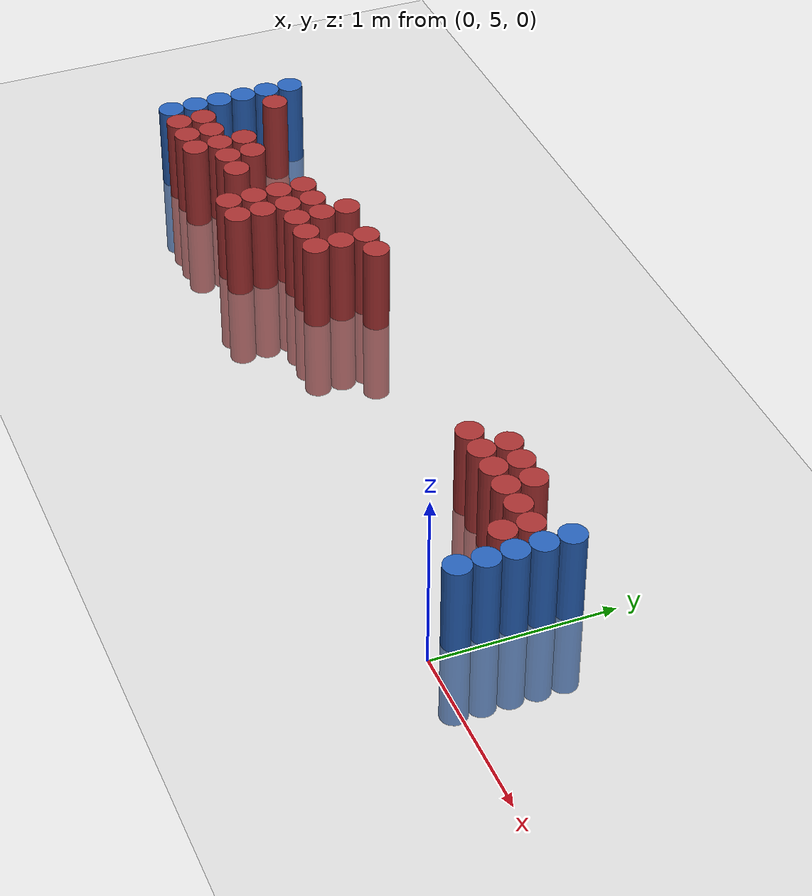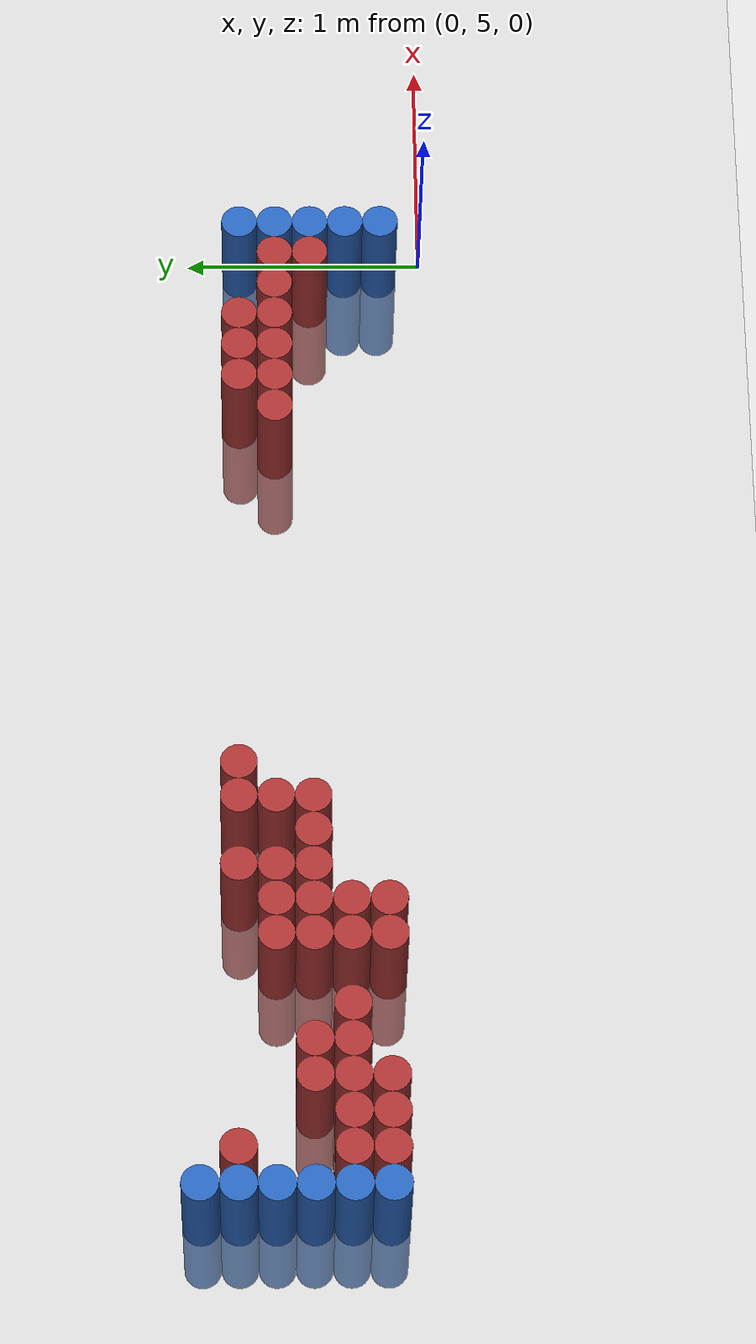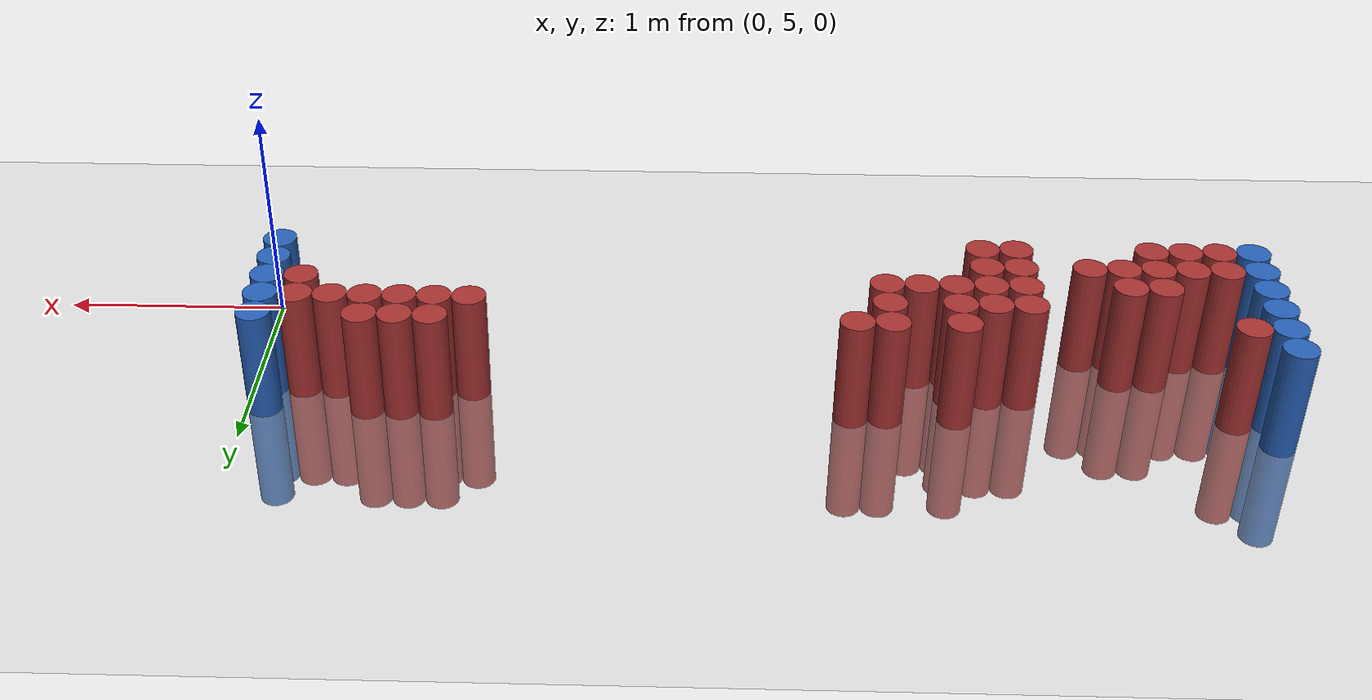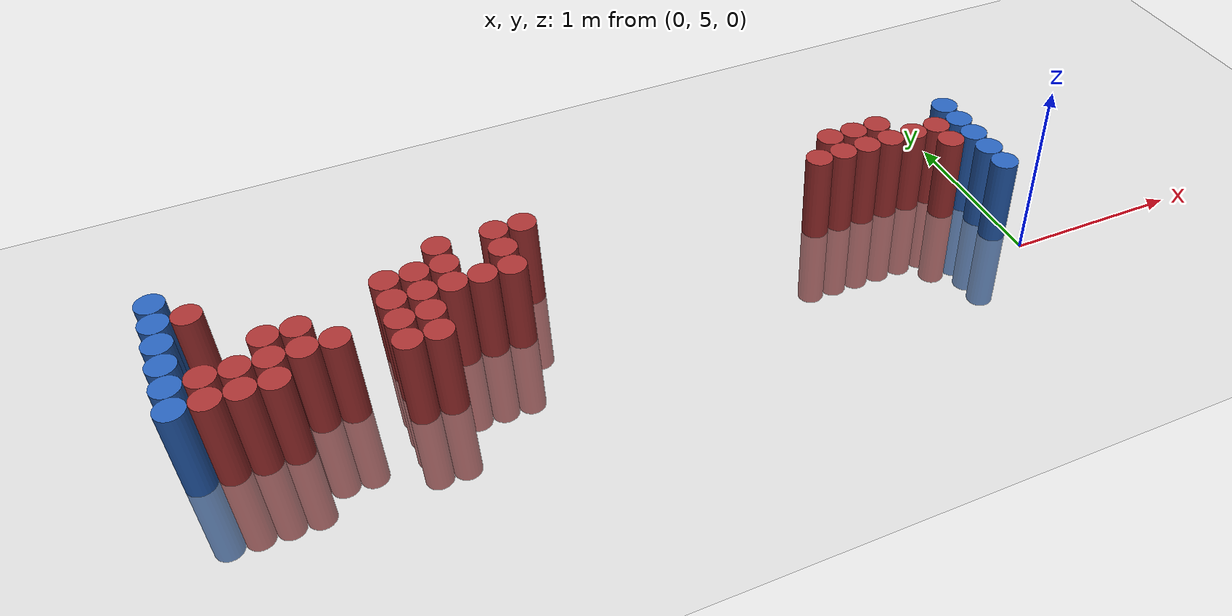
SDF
<sdf version="1.6">
 <world name="default">
  <model name="ground_plane">
   <static>1</static>
   <link name="link">
    <collision name="collision">
     <geometry><plane><normal>0 0 1</normal><size>100 100</size></plane></geometry>
     <surface><friction><ode><mu>100</mu><mu2>50</mu2></ode></friction></surface>
    </collision>
    <visual name="visual">
     <cast_shadows>0</cast_shadows>
     <geometry><plane><normal>0 0 1</normal><size>100 100</size></plane></geometry>
     <material>
      <script><uri>file://media/materials/scripts/gazebo.material</uri><name>Gazebo/Grey</name></script>
     </material>
    </visual>
   </link>
  </model>
  <model name="unit_cylinder_96">
   <static>1</static>
   <pose>-4.425000 5.175000 0.000000 0.000000 0.000000 0.000000</pose>
   <link name="link">
    <inertial>
     <mass>1</mass>
     <inertia><ixx>0.145833</ixx><ixy>0</ixy><ixz>0</ixz><iyy>0.145833</iyy><iyz>0</iyz><izz>0.125</izz></inertia>
    </inertial>
    <collision name="collision">
     <geometry><cylinder><radius>0.075000</radius><length>1</length></cylinder></geometry>
    </collision>
    <visual name="visual">
     <geometry><cylinder><radius>0.075000</radius><length>1</length></cylinder></geometry>
     <material>
      <ambient>0.152000 0.379000 0.720000 1</ambient>
      <diffuse>0.152000 0.379000 0.720000 1</diffuse>
     </material>
     <material>
      <script><name>Gazebo/Grey</name><uri>file://media/materials/scripts/gazebo.material</uri></script>
     </material>
    </visual>
   </link>
  </model>
  <model name="unit_cylinder_97">
   <static>1</static>
   <pose>-4.425000 5.325000 0.000000 0.000000 0.000000 0.000000</pose>
   <link name="link">
    <inertial>
     <mass>1</mass>
     <inertia><ixx>0.145833</ixx><ixy>0</ixy><ixz>0</ixz><iyy>0.145833</iyy><iyz>0</iyz><izz>0.125</izz></inertia>
    </inertial>
    <collision name="collision">
     <geometry><cylinder><radius>0.075000</radius><length>1</length></cylinder></geometry>
    </collision>
    <visual name="visual">
     <geometry><cylinder><radius>0.075000</radius><length>1</length></cylinder></geometry>
     <material>
      <ambient>0.152000 0.379000 0.720000 1</ambient>
      <diffuse>0.152000 0.379000 0.720000 1</diffuse>
     </material>
     <material>
      <script><name>Gazebo/Grey</name><uri>file://media/materials/scripts/gazebo.material</uri></script>
     </material>
    </visual>
   </link>
  </model>
  <model name="unit_cylinder_98">
   <static>1</static>
   <pose>-4.425000 5.475000 0.000000 0.000000 0.000000 0.000000</pose>
   <link name="link">
    <inertial>
     <mass>1</mass>
     <inertia><ixx>0.145833</ixx><ixy>0</ixy><ixz>0</ixz><iyy>0.145833</iyy><iyz>0</iyz><izz>0.125</izz></inertia>
    </inertial>
    <collision name="collision">
     <geometry><cylinder><radius>0.075000</radius><length>1</length></cylinder></geometry>
    </collision>
    <visual name="visual">
     <geometry><cylinder><radius>0.075000</radius><length>1</length></cylinder></geometry>
     <material>
      <ambient>0.152000 0.379000 0.720000 1</ambient>
      <diffuse>0.152000 0.379000 0.720000 1</diffuse>
     </material>
     <material>
      <script><name>Gazebo/Grey</name><uri>file://media/materials/scripts/gazebo.material</uri></script>
     </material>
    </visual>
   </link>
  </model>
  <model name="unit_cylinder_99">
   <static>1</static>
   <pose>-4.425000 5.625000 0.000000 0.000000 0.000000 0.000000</pose>
   <link name="link">
    <inertial>
     <mass>1</mass>
     <inertia><ixx>0.145833</ixx><ixy>0</ixy><ixz>0</ixz><iyy>0.145833</iyy><iyz>0</iyz><izz>0.125</izz></inertia>
    </inertial>
    <collision name="collision">
     <geometry><cylinder><radius>0.075000</radius><length>1</length></cylinder></geometry>
    </collision>
    <visual name="visual">
     <geometry><cylinder><radius>0.075000</radius><length>1</length></cylinder></geometry>
     <material>
      <ambient>0.152000 0.379000 0.720000 1</ambient>
      <diffuse>0.152000 0.379000 0.720000 1</diffuse>
     </material>
     <material>
      <script><name>Gazebo/Grey</name><uri>file://media/materials/scripts/gazebo.material</uri></script>
     </material>
    </visual>
   </link>
  </model>
  <model name="unit_cylinder_100">
   <static>1</static>
   <pose>-4.425000 5.775000 0.000000 0.000000 0.000000 0.000000</pose>
   <link name="link">
    <inertial>
     <mass>1</mass>
     <inertia><ixx>0.145833</ixx><ixy>0</ixy><ixz>0</ixz><iyy>0.145833</iyy><iyz>0</iyz><izz>0.125</izz></inertia>
    </inertial>
    <collision name="collision">
     <geometry><cylinder><radius>0.075000</radius><length>1</length></cylinder></geometry>
    </collision>
    <visual name="visual">
     <geometry><cylinder><radius>0.075000</radius><length>1</length></cylinder></geometry>
     <material>
      <ambient>0.152000 0.379000 0.720000 1</ambient>
      <diffuse>0.152000 0.379000 0.720000 1</diffuse>
     </material>
     <material>
      <script><name>Gazebo/Grey</name><uri>file://media/materials/scripts/gazebo.material</uri></script>
     </material>
    </visual>
   </link>
  </model>
  <model name="unit_cylinder_101">
   <static>1</static>
   <pose>-4.425000 5.925000 0.000000 0.000000 0.000000 0.000000</pose>
   <link name="link">
    <inertial>
     <mass>1</mass>
     <inertia><ixx>0.145833</ixx><ixy>0</ixy><ixz>0</ixz><iyy>0.145833</iyy><iyz>0</iyz><izz>0.125</izz></inertia>
    </inertial>
    <collision name="collision">
     <geometry><cylinder><radius>0.075000</radius><length>1</length></cylinder></geometry>
    </collision>
    <visual name="visual">
     <geometry><cylinder><radius>0.075000</radius><length>1</length></cylinder></geometry>
     <material>
      <ambient>0.152000 0.379000 0.720000 1</ambient>
      <diffuse>0.152000 0.379000 0.720000 1</diffuse>
     </material>
     <material>
      <script><name>Gazebo/Grey</name><uri>file://media/materials/scripts/gazebo.material</uri></script>
     </material>
    </visual>
   </link>
  </model>
  <model name="unit_cylinder_126">
   <static>1</static>
   <pose>-4.275000 5.175000 0.000000 0.000000 0.000000 0.000000</pose>
   <link name="link">
    <inertial>
     <mass>1</mass>
     <inertia><ixx>0.145833</ixx><ixy>0</ixy><ixz>0</ixz><iyy>0.145833</iyy><iyz>0</iyz><izz>0.125</izz></inertia>
    </inertial>
    <collision name="collision">
     <geometry><cylinder><radius>0.075000</radius><length>1</length></cylinder></geometry>
    </collision>
    <visual name="visual">
     <geometry><cylinder><radius>0.075000</radius><length>1</length></cylinder></geometry>
     <material>
      <ambient>0.648000 0.192000 0.192000 1</ambient>
      <diffuse>0.648000 0.192000 0.192000 1</diffuse>
     </material>
     <material>
      <script><name>Gazebo/Grey</name><uri>file://media/materials/scripts/gazebo.material</uri></script>
     </material>
    </visual>
   </link>
  </model>
  <model name="unit_cylinder_127">
   <static>1</static>
   <pose>-4.275000 5.325000 0.000000 0.000000 0.000000 0.000000</pose>
   <link name="link">
    <inertial>
     <mass>1</mass>
     <inertia><ixx>0.145833</ixx><ixy>0</ixy><ixz>0</ixz><iyy>0.145833</iyy><iyz>0</iyz><izz>0.125</izz></inertia>
    </inertial>
    <collision name="collision">
     <geometry><cylinder><radius>0.075000</radius><length>1</length></cylinder></geometry>
    </collision>
    <visual name="visual">
     <geometry><cylinder><radius>0.075000</radius><length>1</length></cylinder></geometry>
     <material>
      <ambient>0.648000 0.192000 0.192000 1</ambient>
      <diffuse>0.648000 0.192000 0.192000 1</diffuse>
     </material>
     <material>
      <script><name>Gazebo/Grey</name><uri>file://media/materials/scripts/gazebo.material</uri></script>
     </material>
    </visual>
   </link>
  </model>
  <model name="unit_cylinder_128">
   <static>1</static>
   <pose>-4.275000 5.775000 0.000000 0.000000 0.000000 0.000000</pose>
   <link name="link">
    <inertial>
     <mass>1</mass>
     <inertia><ixx>0.145833</ixx><ixy>0</ixy><ixz>0</ixz><iyy>0.145833</iyy><iyz>0</iyz><izz>0.125</izz></inertia>
    </inertial>
    <collision name="collision">
     <geometry><cylinder><radius>0.075000</radius><length>1</length></cylinder></geometry>
    </collision>
    <visual name="visual">
     <geometry><cylinder><radius>0.075000</radius><length>1</length></cylinder></geometry>
     <material>
      <ambient>0.648000 0.192000 0.192000 1</ambient>
      <diffuse>0.648000 0.192000 0.192000 1</diffuse>
     </material>
     <material>
      <script><name>Gazebo/Grey</name><uri>file://media/materials/scripts/gazebo.material</uri></script>
     </material>
    </visual>
   </link>
  </model>
  <model name="unit_cylinder_142">
   <static>1</static>
   <pose>-4.125000 5.175000 0.000000 0.000000 0.000000 0.000000</pose>
   <link name="link">
    <inertial>
     <mass>1</mass>
     <inertia><ixx>0.145833</ixx><ixy>0</ixy><ixz>0</ixz><iyy>0.145833</iyy><iyz>0</iyz><izz>0.125</izz></inertia>
    </inertial>
    <collision name="collision">
     <geometry><cylinder><radius>0.075000</radius><length>1</length></cylinder></geometry>
    </collision>
    <visual name="visual">
     <geometry><cylinder><radius>0.075000</radius><length>1</length></cylinder></geometry>
     <material>
      <ambient>0.648000 0.192000 0.192000 1</ambient>
      <diffuse>0.648000 0.192000 0.192000 1</diffuse>
     </material>
     <material>
      <script><name>Gazebo/Grey</name><uri>file://media/materials/scripts/gazebo.material</uri></script>
     </material>
    </visual>
   </link>
  </model>
  <model name="unit_cylinder_143">
   <static>1</static>
   <pose>-4.125000 5.325000 0.000000 0.000000 0.000000 0.000000</pose>
   <link name="link">
    <inertial>
     <mass>1</mass>
     <inertia><ixx>0.145833</ixx><ixy>0</ixy><ixz>0</ixz><iyy>0.145833</iyy><iyz>0</iyz><izz>0.125</izz></inertia>
    </inertial>
    <collision name="collision">
     <geometry><cylinder><radius>0.075000</radius><length>1</length></cylinder></geometry>
    </collision>
    <visual name="visual">
     <geometry><cylinder><radius>0.075000</radius><length>1</length></cylinder></geometry>
     <material>
      <ambient>0.648000 0.192000 0.192000 1</ambient>
      <diffuse>0.648000 0.192000 0.192000 1</diffuse>
     </material>
     <material>
      <script><name>Gazebo/Grey</name><uri>file://media/materials/scripts/gazebo.material</uri></script>
     </material>
    </visual>
   </link>
  </model>
  <model name="unit_cylinder_155">
   <static>1</static>
   <pose>-3.975000 5.175000 0.000000 0.000000 0.000000 0.000000</pose>
   <link name="link">
    <inertial>
     <mass>1</mass>
     <inertia><ixx>0.145833</ixx><ixy>0</ixy><ixz>0</ixz><iyy>0.145833</iyy><iyz>0</iyz><izz>0.125</izz></inertia>
    </inertial>
    <collision name="collision">
     <geometry><cylinder><radius>0.075000</radius><length>1</length></cylinder></geometry>
    </collision>
    <visual name="visual">
     <geometry><cylinder><radius>0.075000</radius><length>1</length></cylinder></geometry>
     <material>
      <ambient>0.648000 0.192000 0.192000 1</ambient>
      <diffuse>0.648000 0.192000 0.192000 1</diffuse>
     </material>
     <material>
      <script><name>Gazebo/Grey</name><uri>file://media/materials/scripts/gazebo.material</uri></script>
     </material>
    </visual>
   </link>
  </model>
  <model name="unit_cylinder_156">
   <static>1</static>
   <pose>-3.975000 5.325000 0.000000 0.000000 0.000000 0.000000</pose>
   <link name="link">
    <inertial>
     <mass>1</mass>
     <inertia><ixx>0.145833</ixx><ixy>0</ixy><ixz>0</ixz><iyy>0.145833</iyy><iyz>0</iyz><izz>0.125</izz></inertia>
    </inertial>
    <collision name="collision">
     <geometry><cylinder><radius>0.075000</radius><length>1</length></cylinder></geometry>
    </collision>
    <visual name="visual">
     <geometry><cylinder><radius>0.075000</radius><length>1</length></cylinder></geometry>
     <material>
      <ambient>0.648000 0.192000 0.192000 1</ambient>
      <diffuse>0.648000 0.192000 0.192000 1</diffuse>
     </material>
     <material>
      <script><name>Gazebo/Grey</name><uri>file://media/materials/scripts/gazebo.material</uri></script>
     </material>
    </visual>
   </link>
  </model>
  <model name="unit_cylinder_157">
   <static>1</static>
   <pose>-3.975000 5.475000 0.000000 0.000000 0.000000 0.000000</pose>
   <link name="link">
    <inertial>
     <mass>1</mass>
     <inertia><ixx>0.145833</ixx><ixy>0</ixy><ixz>0</ixz><iyy>0.145833</iyy><iyz>0</iyz><izz>0.125</izz></inertia>
    </inertial>
    <collision name="collision">
     <geometry><cylinder><radius>0.075000</radius><length>1</length></cylinder></geometry>
    </collision>
    <visual name="visual">
     <geometry><cylinder><radius>0.075000</radius><length>1</length></cylinder></geometry>
     <material>
      <ambient>0.648000 0.192000 0.192000 1</ambient>
      <diffuse>0.648000 0.192000 0.192000 1</diffuse>
     </material>
     <material>
      <script><name>Gazebo/Grey</name><uri>file://media/materials/scripts/gazebo.material</uri></script>
     </material>
    </visual>
   </link>
  </model>
  <model name="unit_cylinder_164">
   <static>1</static>
   <pose>-3.825000 5.325000 0.000000 0.000000 0.000000 0.000000</pose>
   <link name="link">
    <inertial>
     <mass>1</mass>
     <inertia><ixx>0.145833</ixx><ixy>0</ixy><ixz>0</ixz><iyy>0.145833</iyy><iyz>0</iyz><izz>0.125</izz></inertia>
    </inertial>
    <collision name="collision">
     <geometry><cylinder><radius>0.075000</radius><length>1</length></cylinder></geometry>
    </collision>
    <visual name="visual">
     <geometry><cylinder><radius>0.075000</radius><length>1</length></cylinder></geometry>
     <material>
      <ambient>0.648000 0.192000 0.192000 1</ambient>
      <diffuse>0.648000 0.192000 0.192000 1</diffuse>
     </material>
     <material>
      <script><name>Gazebo/Grey</name><uri>file://media/materials/scripts/gazebo.material</uri></script>
     </material>
    </visual>
   </link>
  </model>
  <model name="unit_cylinder_165">
   <static>1</static>
   <pose>-3.825000 5.475000 0.000000 0.000000 0.000000 0.000000</pose>
   <link name="link">
    <inertial>
     <mass>1</mass>
     <inertia><ixx>0.145833</ixx><ixy>0</ixy><ixz>0</ixz><iyy>0.145833</iyy><iyz>0</iyz><izz>0.125</izz></inertia>
    </inertial>
    <collision name="collision">
     <geometry><cylinder><radius>0.075000</radius><length>1</length></cylinder></geometry>
    </collision>
    <visual name="visual">
     <geometry><cylinder><radius>0.075000</radius><length>1</length></cylinder></geometry>
     <material>
      <ambient>0.648000 0.192000 0.192000 1</ambient>
      <diffuse>0.648000 0.192000 0.192000 1</diffuse>
     </material>
     <material>
      <script><name>Gazebo/Grey</name><uri>file://media/materials/scripts/gazebo.material</uri></script>
     </material>
    </visual>
   </link>
  </model>
  <model name="unit_cylinder_171">
   <static>1</static>
   <pose>-3.675000 5.325000 0.000000 0.000000 0.000000 0.000000</pose>
   <link name="link">
    <inertial>
     <mass>1</mass>
     <inertia><ixx>0.145833</ixx><ixy>0</ixy><ixz>0</ixz><iyy>0.145833</iyy><iyz>0</iyz><izz>0.125</izz></inertia>
    </inertial>
    <collision name="collision">
     <geometry><cylinder><radius>0.075000</radius><length>1</length></cylinder></geometry>
    </collision>
    <visual name="visual">
     <geometry><cylinder><radius>0.075000</radius><length>1</length></cylinder></geometry>
     <material>
      <ambient>0.648000 0.192000 0.192000 1</ambient>
      <diffuse>0.648000 0.192000 0.192000 1</diffuse>
     </material>
     <material>
      <script><name>Gazebo/Grey</name><uri>file://media/materials/scripts/gazebo.material</uri></script>
     </material>
    </visual>
   </link>
  </model>
  <model name="unit_cylinder_180">
   <static>1</static>
   <pose>-3.375000 5.175000 0.000000 0.000000 0.000000 0.000000</pose>
   <link name="link">
    <inertial>
     <mass>1</mass>
     <inertia><ixx>0.145833</ixx><ixy>0</ixy><ixz>0</ixz><iyy>0.145833</iyy><iyz>0</iyz><izz>0.125</izz></inertia>
    </inertial>
    <collision name="collision">
     <geometry><cylinder><radius>0.075000</radius><length>1</length></cylinder></geometry>
    </collision>
    <visual name="visual">
     <geometry><cylinder><radius>0.075000</radius><length>1</length></cylinder></geometry>
     <material>
      <ambient>0.648000 0.192000 0.192000 1</ambient>
      <diffuse>0.648000 0.192000 0.192000 1</diffuse>
     </material>
     <material>
      <script><name>Gazebo/Grey</name><uri>file://media/materials/scripts/gazebo.material</uri></script>
     </material>
    </visual>
   </link>
  </model>
  <model name="unit_cylinder_181">
   <static>1</static>
   <pose>-3.375000 5.325000 0.000000 0.000000 0.000000 0.000000</pose>
   <link name="link">
    <inertial>
     <mass>1</mass>
     <inertia><ixx>0.145833</ixx><ixy>0</ixy><ixz>0</ixz><iyy>0.145833</iyy><iyz>0</iyz><izz>0.125</izz></inertia>
    </inertial>
    <collision name="collision">
     <geometry><cylinder><radius>0.075000</radius><length>1</length></cylinder></geometry>
    </collision>
    <visual name="visual">
     <geometry><cylinder><radius>0.075000</radius><length>1</length></cylinder></geometry>
     <material>
      <ambient>0.648000 0.192000 0.192000 1</ambient>
      <diffuse>0.648000 0.192000 0.192000 1</diffuse>
     </material>
     <material>
      <script><name>Gazebo/Grey</name><uri>file://media/materials/scripts/gazebo.material</uri></script>
     </material>
    </visual>
   </link>
  </model>
  <model name="unit_cylinder_182">
   <static>1</static>
   <pose>-3.375000 5.475000 0.000000 0.000000 0.000000 0.000000</pose>
   <link name="link">
    <inertial>
     <mass>1</mass>
     <inertia><ixx>0.145833</ixx><ixy>0</ixy><ixz>0</ixz><iyy>0.145833</iyy><iyz>0</iyz><izz>0.125</izz></inertia>
    </inertial>
    <collision name="collision">
     <geometry><cylinder><radius>0.075000</radius><length>1</length></cylinder></geometry>
    </collision>
    <visual name="visual">
     <geometry><cylinder><radius>0.075000</radius><length>1</length></cylinder></geometry>
     <material>
      <ambient>0.648000 0.192000 0.192000 1</ambient>
      <diffuse>0.648000 0.192000 0.192000 1</diffuse>
     </material>
     <material>
      <script><name>Gazebo/Grey</name><uri>file://media/materials/scripts/gazebo.material</uri></script>
     </material>
    </visual>
   </link>
  </model>
  <model name="unit_cylinder_183">
   <static>1</static>
   <pose>-3.375000 5.625000 0.000000 0.000000 0.000000 0.000000</pose>
   <link name="link">
    <inertial>
     <mass>1</mass>
     <inertia><ixx>0.145833</ixx><ixy>0</ixy><ixz>0</ixz><iyy>0.145833</iyy><iyz>0</iyz><izz>0.125</izz></inertia>
    </inertial>
    <collision name="collision">
     <geometry><cylinder><radius>0.075000</radius><length>1</length></cylinder></geometry>
    </collision>
    <visual name="visual">
     <geometry><cylinder><radius>0.075000</radius><length>1</length></cylinder></geometry>
     <material>
      <ambient>0.648000 0.192000 0.192000 1</ambient>
      <diffuse>0.648000 0.192000 0.192000 1</diffuse>
     </material>
     <material>
      <script><name>Gazebo/Grey</name><uri>file://media/materials/scripts/gazebo.material</uri></script>
     </material>
    </visual>
   </link>
  </model>
  <model name="unit_cylinder_192">
   <static>1</static>
   <pose>-3.225000 5.175000 0.000000 0.000000 0.000000 0.000000</pose>
   <link name="link">
    <inertial>
     <mass>1</mass>
     <inertia><ixx>0.145833</ixx><ixy>0</ixy><ixz>0</ixz><iyy>0.145833</iyy><iyz>0</iyz><izz>0.125</izz></inertia>
    </inertial>
    <collision name="collision">
     <geometry><cylinder><radius>0.075000</radius><length>1</length></cylinder></geometry>
    </collision>
    <visual name="visual">
     <geometry><cylinder><radius>0.075000</radius><length>1</length></cylinder></geometry>
     <material>
      <ambient>0.648000 0.192000 0.192000 1</ambient>
      <diffuse>0.648000 0.192000 0.192000 1</diffuse>
     </material>
     <material>
      <script><name>Gazebo/Grey</name><uri>file://media/materials/scripts/gazebo.material</uri></script>
     </material>
    </visual>
   </link>
  </model>
  <model name="unit_cylinder_193">
   <static>1</static>
   <pose>-3.225000 5.325000 0.000000 0.000000 0.000000 0.000000</pose>
   <link name="link">
    <inertial>
     <mass>1</mass>
     <inertia><ixx>0.145833</ixx><ixy>0</ixy><ixz>0</ixz><iyy>0.145833</iyy><iyz>0</iyz><izz>0.125</izz></inertia>
    </inertial>
    <collision name="collision">
     <geometry><cylinder><radius>0.075000</radius><length>1</length></cylinder></geometry>
    </collision>
    <visual name="visual">
     <geometry><cylinder><radius>0.075000</radius><length>1</length></cylinder></geometry>
     <material>
      <ambient>0.648000 0.192000 0.192000 1</ambient>
      <diffuse>0.648000 0.192000 0.192000 1</diffuse>
     </material>
     <material>
      <script><name>Gazebo/Grey</name><uri>file://media/materials/scripts/gazebo.material</uri></script>
     </material>
    </visual>
   </link>
  </model>
  <model name="unit_cylinder_194">
   <static>1</static>
   <pose>-3.225000 5.475000 0.000000 0.000000 0.000000 0.000000</pose>
   <link name="link">
    <inertial>
     <mass>1</mass>
     <inertia><ixx>0.145833</ixx><ixy>0</ixy><ixz>0</ixz><iyy>0.145833</iyy><iyz>0</iyz><izz>0.125</izz></inertia>
    </inertial>
    <collision name="collision">
     <geometry><cylinder><radius>0.075000</radius><length>1</length></cylinder></geometry>
    </collision>
    <visual name="visual">
     <geometry><cylinder><radius>0.075000</radius><length>1</length></cylinder></geometry>
     <material>
      <ambient>0.648000 0.192000 0.192000 1</ambient>
      <diffuse>0.648000 0.192000 0.192000 1</diffuse>
     </material>
     <material>
      <script><name>Gazebo/Grey</name><uri>file://media/materials/scripts/gazebo.material</uri></script>
     </material>
    </visual>
   </link>
  </model>
  <model name="unit_cylinder_195">
   <static>1</static>
   <pose>-3.225000 5.625000 0.000000 0.000000 0.000000 0.000000</pose>
   <link name="link">
    <inertial>
     <mass>1</mass>
     <inertia><ixx>0.145833</ixx><ixy>0</ixy><ixz>0</ixz><iyy>0.145833</iyy><iyz>0</iyz><izz>0.125</izz></inertia>
    </inertial>
    <collision name="collision">
     <geometry><cylinder><radius>0.075000</radius><length>1</length></cylinder></geometry>
    </collision>
    <visual name="visual">
     <geometry><cylinder><radius>0.075000</radius><length>1</length></cylinder></geometry>
     <material>
      <ambient>0.648000 0.192000 0.192000 1</ambient>
      <diffuse>0.648000 0.192000 0.192000 1</diffuse>
     </material>
     <material>
      <script><name>Gazebo/Grey</name><uri>file://media/materials/scripts/gazebo.material</uri></script>
     </material>
    </visual>
   </link>
  </model>
  <model name="unit_cylinder_206">
   <static>1</static>
   <pose>-3.075000 5.475000 0.000000 0.000000 0.000000 0.000000</pose>
   <link name="link">
    <inertial>
     <mass>1</mass>
     <inertia><ixx>0.145833</ixx><ixy>0</ixy><ixz>0</ixz><iyy>0.145833</iyy><iyz>0</iyz><izz>0.125</izz></inertia>
    </inertial>
    <collision name="collision">
     <geometry><cylinder><radius>0.075000</radius><length>1</length></cylinder></geometry>
    </collision>
    <visual name="visual">
     <geometry><cylinder><radius>0.075000</radius><length>1</length></cylinder></geometry>
     <material>
      <ambient>0.648000 0.192000 0.192000 1</ambient>
      <diffuse>0.648000 0.192000 0.192000 1</diffuse>
     </material>
     <material>
      <script><name>Gazebo/Grey</name><uri>file://media/materials/scripts/gazebo.material</uri></script>
     </material>
    </visual>
   </link>
  </model>
  <model name="unit_cylinder_207">
   <static>1</static>
   <pose>-3.075000 5.625000 0.000000 0.000000 0.000000 0.000000</pose>
   <link name="link">
    <inertial>
     <mass>1</mass>
     <inertia><ixx>0.145833</ixx><ixy>0</ixy><ixz>0</ixz><iyy>0.145833</iyy><iyz>0</iyz><izz>0.125</izz></inertia>
    </inertial>
    <collision name="collision">
     <geometry><cylinder><radius>0.075000</radius><length>1</length></cylinder></geometry>
    </collision>
    <visual name="visual">
     <geometry><cylinder><radius>0.075000</radius><length>1</length></cylinder></geometry>
     <material>
      <ambient>0.648000 0.192000 0.192000 1</ambient>
      <diffuse>0.648000 0.192000 0.192000 1</diffuse>
     </material>
     <material>
      <script><name>Gazebo/Grey</name><uri>file://media/materials/scripts/gazebo.material</uri></script>
     </material>
    </visual>
   </link>
  </model>
  <model name="unit_cylinder_208">
   <static>1</static>
   <pose>-3.075000 5.775000 0.000000 0.000000 0.000000 0.000000</pose>
   <link name="link">
    <inertial>
     <mass>1</mass>
     <inertia><ixx>0.145833</ixx><ixy>0</ixy><ixz>0</ixz><iyy>0.145833</iyy><iyz>0</iyz><izz>0.125</izz></inertia>
    </inertial>
    <collision name="collision">
     <geometry><cylinder><radius>0.075000</radius><length>1</length></cylinder></geometry>
    </collision>
    <visual name="visual">
     <geometry><cylinder><radius>0.075000</radius><length>1</length></cylinder></geometry>
     <material>
      <ambient>0.648000 0.192000 0.192000 1</ambient>
      <diffuse>0.648000 0.192000 0.192000 1</diffuse>
     </material>
     <material>
      <script><name>Gazebo/Grey</name><uri>file://media/materials/scripts/gazebo.material</uri></script>
     </material>
    </visual>
   </link>
  </model>
  <model name="unit_cylinder_215">
   <static>1</static>
   <pose>-2.925000 5.475000 0.000000 0.000000 0.000000 0.000000</pose>
   <link name="link">
    <inertial>
     <mass>1</mass>
     <inertia><ixx>0.145833</ixx><ixy>0</ixy><ixz>0</ixz><iyy>0.145833</iyy><iyz>0</iyz><izz>0.125</izz></inertia>
    </inertial>
    <collision name="collision">
     <geometry><cylinder><radius>0.075000</radius><length>1</length></cylinder></geometry>
    </collision>
    <visual name="visual">
     <geometry><cylinder><radius>0.075000</radius><length>1</length></cylinder></geometry>
     <material>
      <ambient>0.648000 0.192000 0.192000 1</ambient>
      <diffuse>0.648000 0.192000 0.192000 1</diffuse>
     </material>
     <material>
      <script><name>Gazebo/Grey</name><uri>file://media/materials/scripts/gazebo.material</uri></script>
     </material>
    </visual>
   </link>
  </model>
  <model name="unit_cylinder_223">
   <static>1</static>
   <pose>-2.775000 5.475000 0.000000 0.000000 0.000000 0.000000</pose>
   <link name="link">
    <inertial>
     <mass>1</mass>
     <inertia><ixx>0.145833</ixx><ixy>0</ixy><ixz>0</ixz><iyy>0.145833</iyy><iyz>0</iyz><izz>0.125</izz></inertia>
    </inertial>
    <collision name="collision">
     <geometry><cylinder><radius>0.075000</radius><length>1</length></cylinder></geometry>
    </collision>
    <visual name="visual">
     <geometry><cylinder><radius>0.075000</radius><length>1</length></cylinder></geometry>
     <material>
      <ambient>0.648000 0.192000 0.192000 1</ambient>
      <diffuse>0.648000 0.192000 0.192000 1</diffuse>
     </material>
     <material>
      <script><name>Gazebo/Grey</name><uri>file://media/materials/scripts/gazebo.material</uri></script>
     </material>
    </visual>
   </link>
  </model>
  <model name="unit_cylinder_224">
   <static>1</static>
   <pose>-2.775000 5.625000 0.000000 0.000000 0.000000 0.000000</pose>
   <link name="link">
    <inertial>
     <mass>1</mass>
     <inertia><ixx>0.145833</ixx><ixy>0</ixy><ixz>0</ixz><iyy>0.145833</iyy><iyz>0</iyz><izz>0.125</izz></inertia>
    </inertial>
    <collision name="collision">
     <geometry><cylinder><radius>0.075000</radius><length>1</length></cylinder></geometry>
    </collision>
    <visual name="visual">
     <geometry><cylinder><radius>0.075000</radius><length>1</length></cylinder></geometry>
     <material>
      <ambient>0.648000 0.192000 0.192000 1</ambient>
      <diffuse>0.648000 0.192000 0.192000 1</diffuse>
     </material>
     <material>
      <script><name>Gazebo/Grey</name><uri>file://media/materials/scripts/gazebo.material</uri></script>
     </material>
    </visual>
   </link>
  </model>
  <model name="unit_cylinder_225">
   <static>1</static>
   <pose>-2.775000 5.775000 0.000000 0.000000 0.000000 0.000000</pose>
   <link name="link">
    <inertial>
     <mass>1</mass>
     <inertia><ixx>0.145833</ixx><ixy>0</ixy><ixz>0</ixz><iyy>0.145833</iyy><iyz>0</iyz><izz>0.125</izz></inertia>
    </inertial>
    <collision name="collision">
     <geometry><cylinder><radius>0.075000</radius><length>1</length></cylinder></geometry>
    </collision>
    <visual name="visual">
     <geometry><cylinder><radius>0.075000</radius><length>1</length></cylinder></geometry>
     <material>
      <ambient>0.648000 0.192000 0.192000 1</ambient>
      <diffuse>0.648000 0.192000 0.192000 1</diffuse>
     </material>
     <material>
      <script><name>Gazebo/Grey</name><uri>file://media/materials/scripts/gazebo.material</uri></script>
     </material>
    </visual>
   </link>
  </model>
  <model name="unit_cylinder_233">
   <static>1</static>
   <pose>-2.625000 5.775000 0.000000 0.000000 0.000000 0.000000</pose>
   <link name="link">
    <inertial>
     <mass>1</mass>
     <inertia><ixx>0.145833</ixx><ixy>0</ixy><ixz>0</ixz><iyy>0.145833</iyy><iyz>0</iyz><izz>0.125</izz></inertia>
    </inertial>
    <collision name="collision">
     <geometry><cylinder><radius>0.075000</radius><length>1</length></cylinder></geometry>
    </collision>
    <visual name="visual">
     <geometry><cylinder><radius>0.075000</radius><length>1</length></cylinder></geometry>
     <material>
      <ambient>0.648000 0.192000 0.192000 1</ambient>
      <diffuse>0.648000 0.192000 0.192000 1</diffuse>
     </material>
     <material>
      <script><name>Gazebo/Grey</name><uri>file://media/materials/scripts/gazebo.material</uri></script>
     </material>
    </visual>
   </link>
  </model>
  <model name="unit_cylinder_255">
   <static>1</static>
   <pose>-0.975000 5.625000 0.000000 0.000000 0.000000 0.000000</pose>
   <link name="link">
    <inertial>
     <mass>1</mass>
     <inertia><ixx>0.145833</ixx><ixy>0</ixy><ixz>0</ixz><iyy>0.145833</iyy><iyz>0</iyz><izz>0.125</izz></inertia>
    </inertial>
    <collision name="collision">
     <geometry><cylinder><radius>0.075000</radius><length>1</length></cylinder></geometry>
    </collision>
    <visual name="visual">
     <geometry><cylinder><radius>0.075000</radius><length>1</length></cylinder></geometry>
     <material>
      <ambient>0.648000 0.192000 0.192000 1</ambient>
      <diffuse>0.648000 0.192000 0.192000 1</diffuse>
     </material>
     <material>
      <script><name>Gazebo/Grey</name><uri>file://media/materials/scripts/gazebo.material</uri></script>
     </material>
    </visual>
   </link>
  </model>
  <model name="unit_cylinder_257">
   <static>1</static>
   <pose>-0.825000 5.625000 0.000000 0.000000 0.000000 0.000000</pose>
   <link name="link">
    <inertial>
     <mass>1</mass>
     <inertia><ixx>0.145833</ixx><ixy>0</ixy><ixz>0</ixz><iyy>0.145833</iyy><iyz>0</iyz><izz>0.125</izz></inertia>
    </inertial>
    <collision name="collision">
     <geometry><cylinder><radius>0.075000</radius><length>1</length></cylinder></geometry>
    </collision>
    <visual name="visual">
     <geometry><cylinder><radius>0.075000</radius><length>1</length></cylinder></geometry>
     <material>
      <ambient>0.648000 0.192000 0.192000 1</ambient>
      <diffuse>0.648000 0.192000 0.192000 1</diffuse>
     </material>
     <material>
      <script><name>Gazebo/Grey</name><uri>file://media/materials/scripts/gazebo.material</uri></script>
     </material>
    </visual>
   </link>
  </model>
  <model name="unit_cylinder_258">
   <static>1</static>
   <pose>-0.825000 5.775000 0.000000 0.000000 0.000000 0.000000</pose>
   <link name="link">
    <inertial>
     <mass>1</mass>
     <inertia><ixx>0.145833</ixx><ixy>0</ixy><ixz>0</ixz><iyy>0.145833</iyy><iyz>0</iyz><izz>0.125</izz></inertia>
    </inertial>
    <collision name="collision">
     <geometry><cylinder><radius>0.075000</radius><length>1</length></cylinder></geometry>
    </collision>
    <visual name="visual">
     <geometry><cylinder><radius>0.075000</radius><length>1</length></cylinder></geometry>
     <material>
      <ambient>0.648000 0.192000 0.192000 1</ambient>
      <diffuse>0.648000 0.192000 0.192000 1</diffuse>
     </material>
     <material>
      <script><name>Gazebo/Grey</name><uri>file://media/materials/scripts/gazebo.material</uri></script>
     </material>
    </visual>
   </link>
  </model>
  <model name="unit_cylinder_264">
   <static>1</static>
   <pose>-0.675000 5.625000 0.000000 0.000000 0.000000 0.000000</pose>
   <link name="link">
    <inertial>
     <mass>1</mass>
     <inertia><ixx>0.145833</ixx><ixy>0</ixy><ixz>0</ixz><iyy>0.145833</iyy><iyz>0</iyz><izz>0.125</izz></inertia>
    </inertial>
    <collision name="collision">
     <geometry><cylinder><radius>0.075000</radius><length>1</length></cylinder></geometry>
    </collision>
    <visual name="visual">
     <geometry><cylinder><radius>0.075000</radius><length>1</length></cylinder></geometry>
     <material>
      <ambient>0.648000 0.192000 0.192000 1</ambient>
      <diffuse>0.648000 0.192000 0.192000 1</diffuse>
     </material>
     <material>
      <script><name>Gazebo/Grey</name><uri>file://media/materials/scripts/gazebo.material</uri></script>
     </material>
    </visual>
   </link>
  </model>
  <model name="unit_cylinder_265">
   <static>1</static>
   <pose>-0.675000 5.775000 0.000000 0.000000 0.000000 0.000000</pose>
   <link name="link">
    <inertial>
     <mass>1</mass>
     <inertia><ixx>0.145833</ixx><ixy>0</ixy><ixz>0</ixz><iyy>0.145833</iyy><iyz>0</iyz><izz>0.125</izz></inertia>
    </inertial>
    <collision name="collision">
     <geometry><cylinder><radius>0.075000</radius><length>1</length></cylinder></geometry>
    </collision>
    <visual name="visual">
     <geometry><cylinder><radius>0.075000</radius><length>1</length></cylinder></geometry>
     <material>
      <ambient>0.648000 0.192000 0.192000 1</ambient>
      <diffuse>0.648000 0.192000 0.192000 1</diffuse>
     </material>
     <material>
      <script><name>Gazebo/Grey</name><uri>file://media/materials/scripts/gazebo.material</uri></script>
     </material>
    </visual>
   </link>
  </model>
  <model name="unit_cylinder_272">
   <static>1</static>
   <pose>-0.525000 5.625000 0.000000 0.000000 0.000000 0.000000</pose>
   <link name="link">
    <inertial>
     <mass>1</mass>
     <inertia><ixx>0.145833</ixx><ixy>0</ixy><ixz>0</ixz><iyy>0.145833</iyy><iyz>0</iyz><izz>0.125</izz></inertia>
    </inertial>
    <collision name="collision">
     <geometry><cylinder><radius>0.075000</radius><length>1</length></cylinder></geometry>
    </collision>
    <visual name="visual">
     <geometry><cylinder><radius>0.075000</radius><length>1</length></cylinder></geometry>
     <material>
      <ambient>0.648000 0.192000 0.192000 1</ambient>
      <diffuse>0.648000 0.192000 0.192000 1</diffuse>
     </material>
     <material>
      <script><name>Gazebo/Grey</name><uri>file://media/materials/scripts/gazebo.material</uri></script>
     </material>
    </visual>
   </link>
  </model>
  <model name="unit_cylinder_273">
   <static>1</static>
   <pose>-0.525000 5.775000 0.000000 0.000000 0.000000 0.000000</pose>
   <link name="link">
    <inertial>
     <mass>1</mass>
     <inertia><ixx>0.145833</ixx><ixy>0</ixy><ixz>0</ixz><iyy>0.145833</iyy><iyz>0</iyz><izz>0.125</izz></inertia>
    </inertial>
    <collision name="collision">
     <geometry><cylinder><radius>0.075000</radius><length>1</length></cylinder></geometry>
    </collision>
    <visual name="visual">
     <geometry><cylinder><radius>0.075000</radius><length>1</length></cylinder></geometry>
     <material>
      <ambient>0.648000 0.192000 0.192000 1</ambient>
      <diffuse>0.648000 0.192000 0.192000 1</diffuse>
     </material>
     <material>
      <script><name>Gazebo/Grey</name><uri>file://media/materials/scripts/gazebo.material</uri></script>
     </material>
    </visual>
   </link>
  </model>
  <model name="unit_cylinder_281">
   <static>1</static>
   <pose>-0.375000 5.625000 0.000000 0.000000 0.000000 0.000000</pose>
   <link name="link">
    <inertial>
     <mass>1</mass>
     <inertia><ixx>0.145833</ixx><ixy>0</ixy><ixz>0</ixz><iyy>0.145833</iyy><iyz>0</iyz><izz>0.125</izz></inertia>
    </inertial>
    <collision name="collision">
     <geometry><cylinder><radius>0.075000</radius><length>1</length></cylinder></geometry>
    </collision>
    <visual name="visual">
     <geometry><cylinder><radius>0.075000</radius><length>1</length></cylinder></geometry>
     <material>
      <ambient>0.648000 0.192000 0.192000 1</ambient>
      <diffuse>0.648000 0.192000 0.192000 1</diffuse>
     </material>
     <material>
      <script><name>Gazebo/Grey</name><uri>file://media/materials/scripts/gazebo.material</uri></script>
     </material>
    </visual>
   </link>
  </model>
  <model name="unit_cylinder_292">
   <static>1</static>
   <pose>-0.225000 5.475000 0.000000 0.000000 0.000000 0.000000</pose>
   <link name="link">
    <inertial>
     <mass>1</mass>
     <inertia><ixx>0.145833</ixx><ixy>0</ixy><ixz>0</ixz><iyy>0.145833</iyy><iyz>0</iyz><izz>0.125</izz></inertia>
    </inertial>
    <collision name="collision">
     <geometry><cylinder><radius>0.075000</radius><length>1</length></cylinder></geometry>
    </collision>
    <visual name="visual">
     <geometry><cylinder><radius>0.075000</radius><length>1</length></cylinder></geometry>
     <material>
      <ambient>0.648000 0.192000 0.192000 1</ambient>
      <diffuse>0.648000 0.192000 0.192000 1</diffuse>
     </material>
     <material>
      <script><name>Gazebo/Grey</name><uri>file://media/materials/scripts/gazebo.material</uri></script>
     </material>
    </visual>
   </link>
  </model>
  <model name="unit_cylinder_293">
   <static>1</static>
   <pose>-0.225000 5.625000 0.000000 0.000000 0.000000 0.000000</pose>
   <link name="link">
    <inertial>
     <mass>1</mass>
     <inertia><ixx>0.145833</ixx><ixy>0</ixy><ixz>0</ixz><iyy>0.145833</iyy><iyz>0</iyz><izz>0.125</izz></inertia>
    </inertial>
    <collision name="collision">
     <geometry><cylinder><radius>0.075000</radius><length>1</length></cylinder></geometry>
    </collision>
    <visual name="visual">
     <geometry><cylinder><radius>0.075000</radius><length>1</length></cylinder></geometry>
     <material>
      <ambient>0.648000 0.192000 0.192000 1</ambient>
      <diffuse>0.648000 0.192000 0.192000 1</diffuse>
     </material>
     <material>
      <script><name>Gazebo/Grey</name><uri>file://media/materials/scripts/gazebo.material</uri></script>
     </material>
    </visual>
   </link>
  </model>
  <model name="unit_cylinder_308">
   <static>1</static>
   <pose>-0.075000 5.175000 0.000000 0.000000 0.000000 0.000000</pose>
   <link name="link">
    <inertial>
     <mass>1</mass>
     <inertia><ixx>0.145833</ixx><ixy>0</ixy><ixz>0</ixz><iyy>0.145833</iyy><iyz>0</iyz><izz>0.125</izz></inertia>
    </inertial>
    <collision name="collision">
     <geometry><cylinder><radius>0.075000</radius><length>1</length></cylinder></geometry>
    </collision>
    <visual name="visual">
     <geometry><cylinder><radius>0.075000</radius><length>1</length></cylinder></geometry>
     <material>
      <ambient>0.152000 0.379000 0.720000 1</ambient>
      <diffuse>0.152000 0.379000 0.720000 1</diffuse>
     </material>
     <material>
      <script><name>Gazebo/Grey</name><uri>file://media/materials/scripts/gazebo.material</uri></script>
     </material>
    </visual>
   </link>
  </model>
  <model name="unit_cylinder_309">
   <static>1</static>
   <pose>-0.075000 5.325000 0.000000 0.000000 0.000000 0.000000</pose>
   <link name="link">
    <inertial>
     <mass>1</mass>
     <inertia><ixx>0.145833</ixx><ixy>0</ixy><ixz>0</ixz><iyy>0.145833</iyy><iyz>0</iyz><izz>0.125</izz></inertia>
    </inertial>
    <collision name="collision">
     <geometry><cylinder><radius>0.075000</radius><length>1</length></cylinder></geometry>
    </collision>
    <visual name="visual">
     <geometry><cylinder><radius>0.075000</radius><length>1</length></cylinder></geometry>
     <material>
      <ambient>0.152000 0.379000 0.720000 1</ambient>
      <diffuse>0.152000 0.379000 0.720000 1</diffuse>
     </material>
     <material>
      <script><name>Gazebo/Grey</name><uri>file://media/materials/scripts/gazebo.material</uri></script>
     </material>
    </visual>
   </link>
  </model>
  <model name="unit_cylinder_310">
   <static>1</static>
   <pose>-0.075000 5.475000 0.000000 0.000000 0.000000 0.000000</pose>
   <link name="link">
    <inertial>
     <mass>1</mass>
     <inertia><ixx>0.145833</ixx><ixy>0</ixy><ixz>0</ixz><iyy>0.145833</iyy><iyz>0</iyz><izz>0.125</izz></inertia>
    </inertial>
    <collision name="collision">
     <geometry><cylinder><radius>0.075000</radius><length>1</length></cylinder></geometry>
    </collision>
    <visual name="visual">
     <geometry><cylinder><radius>0.075000</radius><length>1</length></cylinder></geometry>
     <material>
      <ambient>0.152000 0.379000 0.720000 1</ambient>
      <diffuse>0.152000 0.379000 0.720000 1</diffuse>
     </material>
     <material>
      <script><name>Gazebo/Grey</name><uri>file://media/materials/scripts/gazebo.material</uri></script>
     </material>
    </visual>
   </link>
  </model>
  <model name="unit_cylinder_311">
   <static>1</static>
   <pose>-0.075000 5.625000 0.000000 0.000000 0.000000 0.000000</pose>
   <link name="link">
    <inertial>
     <mass>1</mass>
     <inertia><ixx>0.145833</ixx><ixy>0</ixy><ixz>0</ixz><iyy>0.145833</iyy><iyz>0</iyz><izz>0.125</izz></inertia>
    </inertial>
    <collision name="collision">
     <geometry><cylinder><radius>0.075000</radius><length>1</length></cylinder></geometry>
    </collision>
    <visual name="visual">
     <geometry><cylinder><radius>0.075000</radius><length>1</length></cylinder></geometry>
     <material>
      <ambient>0.152000 0.379000 0.720000 1</ambient>
      <diffuse>0.152000 0.379000 0.720000 1</diffuse>
     </material>
     <material>
      <script><name>Gazebo/Grey</name><uri>file://media/materials/scripts/gazebo.material</uri></script>
     </material>
    </visual>
   </link>
  </model>
  <model name="unit_cylinder_312">
   <static>1</static>
   <pose>-0.075000 5.775000 0.000000 0.000000 0.000000 0.000000</pose>
   <link name="link">
    <inertial>
     <mass>1</mass>
     <inertia><ixx>0.145833</ixx><ixy>0</ixy><ixz>0</ixz><iyy>0.145833</iyy><iyz>0</iyz><izz>0.125</izz></inertia>
    </inertial>
    <collision name="collision">
     <geometry><cylinder><radius>0.075000</radius><length>1</length></cylinder></geometry>
    </collision>
    <visual name="visual">
     <geometry><cylinder><radius>0.075000</radius><length>1</length></cylinder></geometry>
     <material>
      <ambient>0.152000 0.379000 0.720000 1</ambient>
      <diffuse>0.152000 0.379000 0.720000 1</diffuse>
     </material>
     <material>
      <script><name>Gazebo/Grey</name><uri>file://media/materials/scripts/gazebo.material</uri></script>
     </material>
    </visual>
   </link>
  </model>
 </world>
</sdf>
